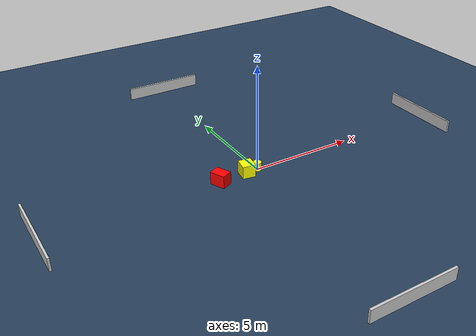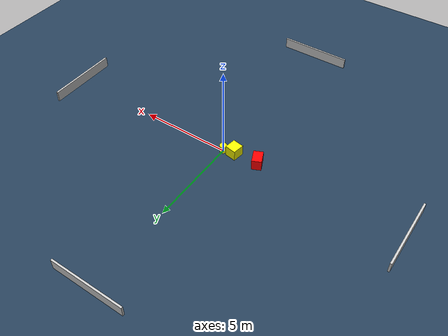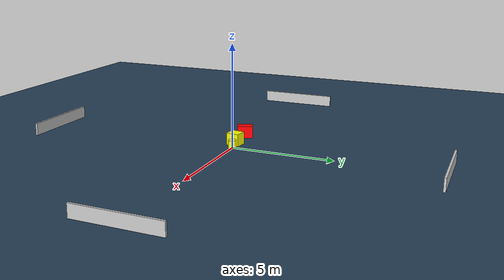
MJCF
<?xml version="1.0" ?>
<mujoco model="generated_environment">
  <option timestep="0.01" integrator="RK4" cone="elliptic"/>
  <default>
    <geom density="1"/>
  </default>
  <asset>
    <texture builtin="gradient" height="3072" name="skybox" rgb1="0.3 0.5 0.7" rgb2="0 0 0" type="skybox" width="512"/>
    <texture builtin="checker" height="300" name="groundplane" rgb1="0.2 0.3 0.4" rgb2="0.1 0.2 0.3" type="2d" width="300"/>
    <material name="groundplane" reflectance="0.2" texrepeat="5 5" texture="groundplane"/>
  </asset>
  <worldbody>
    <light dir="0 0 -1" directional="true" pos="0 0 1.5"/>
    <geom condim="3" friction="0.5 0.005 0.001" material="groundplane" name="floor" pos="0 0 0" size="0 0 0.05" type="plane"/>
    <body name="walls">
      <geom name="wall_1" condim="4" pos="-10.0 0.0 0.3" rgba="0.800000011920929 0.800000011920929 0.800000011920929 1.0" size="0.05 2.0 0.3" type="box"/>
      <geom name="wall_2" condim="4" pos="10.0 0.0 0.3" rgba="0.800000011920929 0.800000011920929 0.800000011920929 1.0" size="0.05 2.0 0.3" type="box"/>
      <geom name="wall_3" condim="4" pos="0.0 -10.0 0.3" rgba="0.800000011920929 0.800000011920929 0.800000011920929 1.0" size="2.0 0.05 0.3" type="box"/>
      <geom name="wall_4" condim="4" pos="0.0 10.0 0.3" rgba="0.800000011920929 0.800000011920929 0.800000011920929 1.0" size="2.0 0.05 0.3" type="box"/>
    </body>
    <body name="robot">
      <joint name="joint_x" type="slide" pos="0 0 0" axis="1 0 0"/>
      <joint name="joint_y" type="slide" pos="0 0 0" axis="0 1 0"/>
      <geom name="robot" type="cylinder" pos="0.0 0.0 0.2" size="0.2 0.2 0.0" mass="5.0" friction="1.0 0.005 0.0001" condim="4" rgba="1.0 1.0 0.0 1.0"/>
    </body>
    <body name="obstacle_1_movable">
      <geom name="obstacle_1_movable" condim="4" pos="-0.6137484094723397 -0.10306338895692924 0.3" euler="0 0 260.89711363535673" friction="0.0 0.005 0.001" rgba="1.0 1.0 0.0 1.0" size="0.3172441142022464 0.30563217242199686 0.3" type="box" mass="0.1"/>
      <joint type="free"/>
    </body>
    <body name="obstacle_2_static">
      <geom name="obstacle_2_static" condim="4" pos="-1.9797957858443536 -0.15997996602709627 0.3" euler="0 0 23.890505744010063" friction="0.0 0.005 0.001" rgba="1.0 0.0 0.0 1.0" size="0.2581680705571621 0.3684644320220013 0.3" type="box"/>
    </body>
  </worldbody>
  <actuator>
    <motor name="actuator_x" joint="joint_x" gear="1" ctrlrange="-1 1"/>
    <motor name="actuator_y" joint="joint_y" gear="1" ctrlrange="-1 1"/>
  </actuator>
</mujoco>
